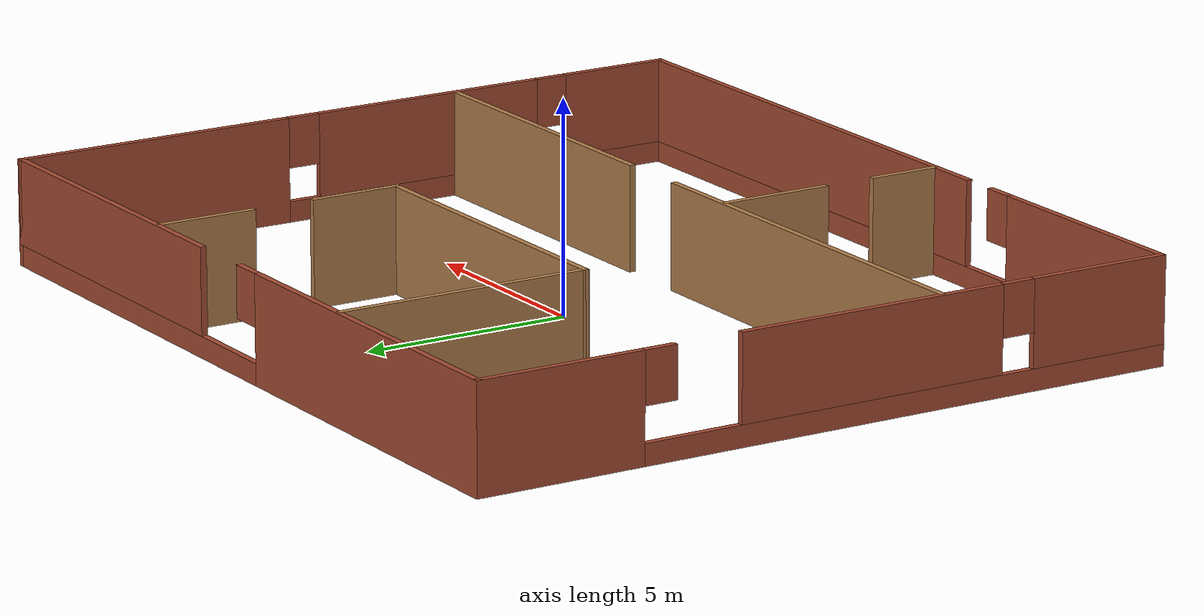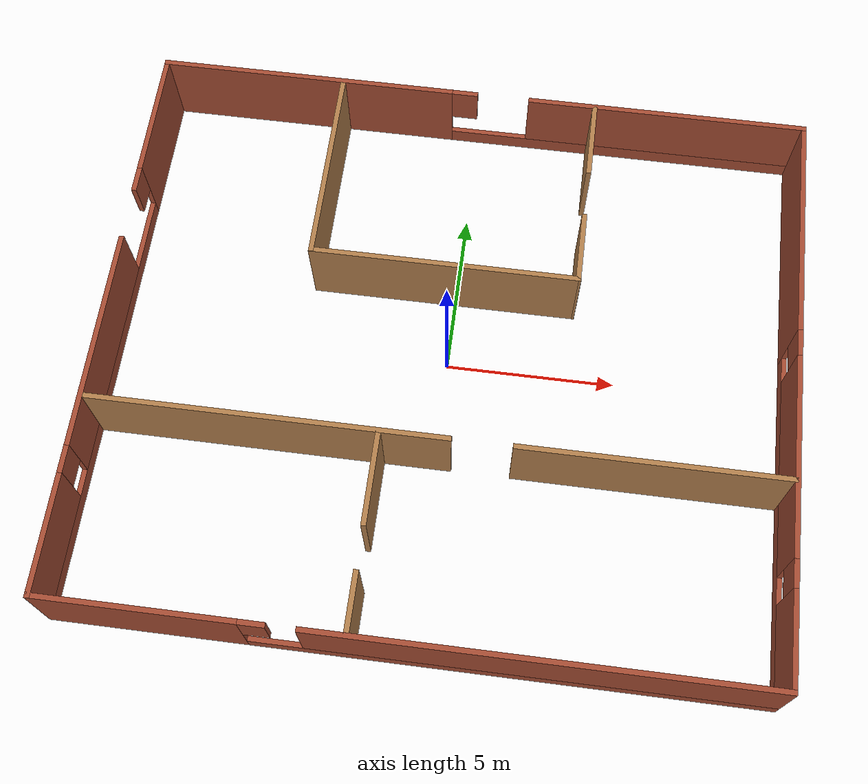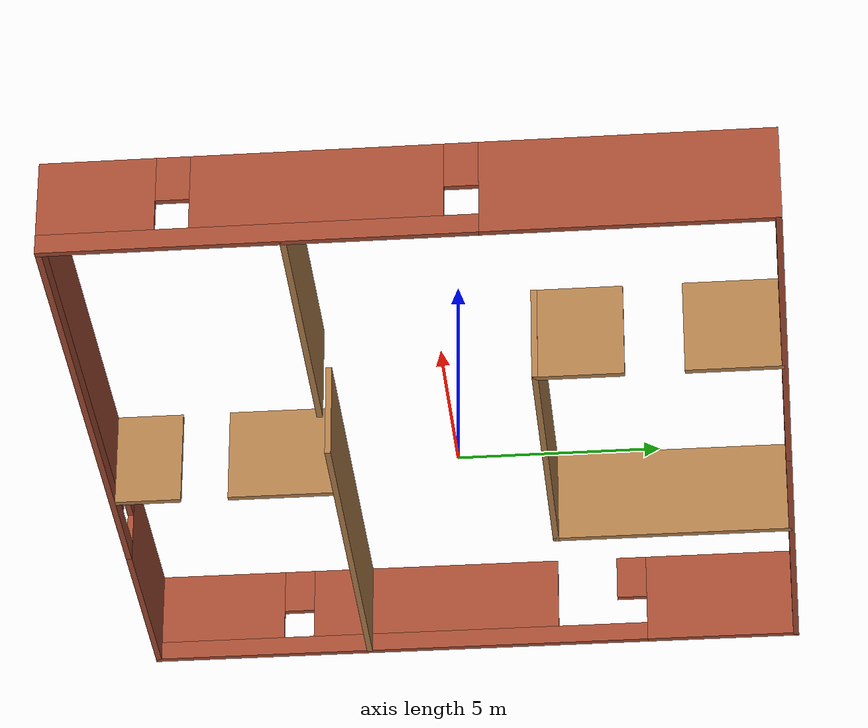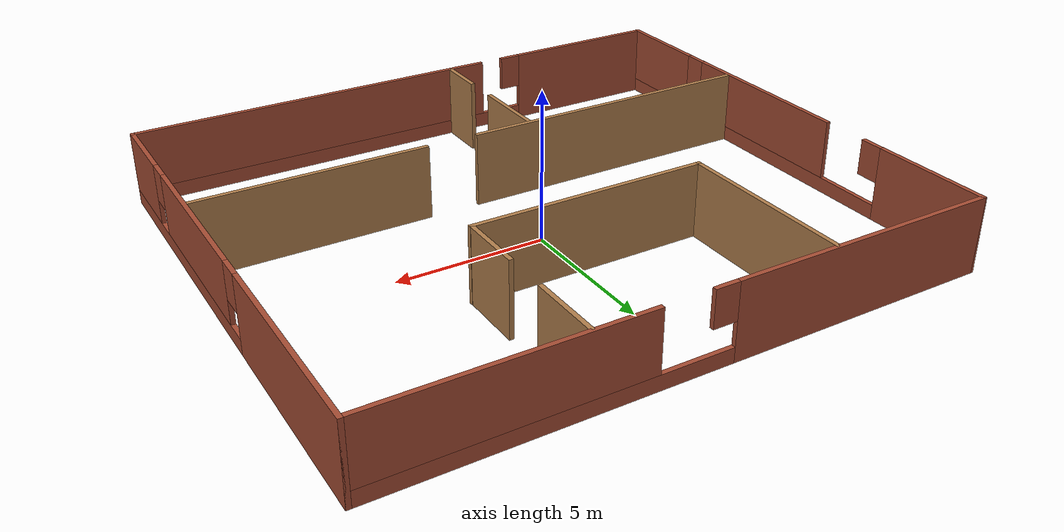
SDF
<?xml version='1.0'?>
<sdf version='1.7'>
  <model name='masters_world'>
    <pose>0.043095 -0.36879 0 0 -0 0</pose>
    <link name='Wall_11'>
      <pose>-9.5e-05 -8.55021 0 0 -0 0</pose>
      <visual name='Wall_11_Visual_0'>
        <pose>-7.19218 0 1.25 0 -0 0</pose>
        <geometry>
          <box>
            <size>5.61564 0.15 2.5</size>
          </box>
        </geometry>
        <material>
          <script>
            <uri>file://media/materials/scripts/gazebo.material</uri>
            <name>Gazebo/Bricks</name>
          </script>
          <ambient>1 1 1 1</ambient>
        </material>
        <meta>
          <layer>0</layer>
        </meta>
      </visual>
      <collision name='Wall_11_Collision_0'>
        <geometry>
          <box>
            <size>5.61564 0.15 2.5</size>
          </box>
        </geometry>
        <pose>-7.19218 0 1.25 0 -0 0</pose>
      </collision>
      <visual name='Wall_11_Visual_1'>
        <pose>2.80782 0 0.25 0 -0 0</pose>
        <geometry>
          <box>
            <size>14.3844 0.15 0.5</size>
          </box>
        </geometry>
        <material>
          <script>
            <uri>file://media/materials/scripts/gazebo.material</uri>
            <name>Gazebo/Bricks</name>
          </script>
          <ambient>1 1 1 1</ambient>
        </material>
        <meta>
          <layer>0</layer>
        </meta>
      </visual>
      <collision name='Wall_11_Collision_1'>
        <geometry>
          <box>
            <size>14.3844 0.15 0.5</size>
          </box>
        </geometry>
        <pose>2.80782 0 0.25 0 -0 0</pose>
      </collision>
      <visual name='Wall_11_Visual_2'>
        <pose>3.58022 0 1.5 0 -0 0</pose>
        <geometry>
          <box>
            <size>12.8396 0.15 2</size>
          </box>
        </geometry>
        <material>
          <script>
            <uri>file://media/materials/scripts/gazebo.material</uri>
            <name>Gazebo/Bricks</name>
          </script>
          <ambient>1 1 1 1</ambient>
        </material>
        <meta>
          <layer>0</layer>
        </meta>
      </visual>
      <collision name='Wall_11_Collision_2'>
        <geometry>
          <box>
            <size>12.8396 0.15 2</size>
          </box>
        </geometry>
        <pose>3.58022 0 1.5 0 -0 0</pose>
      </collision>
      <visual name='Wall_11_Visual_3'>
        <pose>-4.01195 0 1.9 0 -0 0</pose>
        <geometry>
          <box>
            <size>0.744806 0.15 1.2</size>
          </box>
        </geometry>
        <material>
          <script>
            <uri>file://media/materials/scripts/gazebo.material</uri>
            <name>Gazebo/Bricks</name>
          </script>
          <ambient>1 1 1 1</ambient>
        </material>
        <meta>
          <layer>0</layer>
        </meta>
      </visual>
      <collision name='Wall_11_Collision_3'>
        <geometry>
          <box>
            <size>0.744806 0.15 1.2</size>
          </box>
        </geometry>
        <pose>-4.01195 0 1.9 0 -0 0</pose>
      </collision>
    </link>
    <link name='Wall_13'>
      <collision name='Wall_13_Collision'>
        <geometry>
          <box>
            <size>6.12 0.15 2.5</size>
          </box>
        </geometry>
        <pose>0 0 1.25 0 -0 0</pose>
      </collision>
      <visual name='Wall_13_Visual'>
        <pose>0 0 1.25 0 -0 0</pose>
        <geometry>
          <box>
            <size>6.12 0.15 2.5</size>
          </box>
        </geometry>
        <material>
          <script>
            <uri>file://media/materials/scripts/gazebo.material</uri>
            <name>Gazebo/Wood</name>
          </script>
          <ambient>1 1 1 1</ambient>
        </material>
        <meta>
          <layer>0</layer>
        </meta>
      </visual>
      <pose>-4.33157 5.50864 0 0 -0 -1.5708</pose>
    </link>
    <link name='Wall_14'>
      <collision name='Wall_14_Collision'>
        <geometry>
          <box>
            <size>8.0115 0.15 2.5</size>
          </box>
        </geometry>
        <pose>0 0 1.25 0 -0 0</pose>
      </collision>
      <visual name='Wall_14_Visual'>
        <pose>0 0 1.25 0 -0 0</pose>
        <geometry>
          <box>
            <size>8.0115 0.15 2.5</size>
          </box>
        </geometry>
        <material>
          <script>
            <uri>file://media/materials/scripts/gazebo.material</uri>
            <name>Gazebo/Wood</name>
          </script>
          <ambient>1 1 1 1</ambient>
        </material>
        <meta>
          <layer>0</layer>
        </meta>
      </visual>
      <pose>-0.400821 2.51464 0 0 -0 0.000636</pose>
    </link>
    <link name='Wall_15'>
      <collision name='Wall_15_Collision'>
        <geometry>
          <box>
            <size>2.25 0.15 2.5</size>
          </box>
        </geometry>
        <pose>0 0 1.25 0 -0 0</pose>
      </collision>
      <visual name='Wall_15_Visual'>
        <pose>0 0 1.25 0 -0 0</pose>
        <geometry>
          <box>
            <size>2.25 0.15 2.5</size>
          </box>
        </geometry>
        <material>
          <script>
            <uri>file://media/materials/scripts/gazebo.material</uri>
            <name>Gazebo/Wood</name>
          </script>
          <ambient>1 1 1 1</ambient>
        </material>
        <meta>
          <layer>0</layer>
        </meta>
      </visual>
      <pose>3.51843 3.56714 0 0 -0 1.5708</pose>
    </link>
    <link name='Wall_22'>
      <collision name='Wall_22_Collision'>
        <geometry>
          <box>
            <size>2.4 0.15 2.5</size>
          </box>
        </geometry>
        <pose>0 0 1.25 0 -0 0</pose>
      </collision>
      <visual name='Wall_22_Visual'>
        <pose>0 0 1.25 0 -0 0</pose>
        <geometry>
          <box>
            <size>2.4 0.15 2.5</size>
          </box>
        </geometry>
        <material>
          <script>
            <uri>file://media/materials/scripts/gazebo.material</uri>
            <name>Gazebo/Wood</name>
          </script>
          <ambient>1 1 1 1</ambient>
        </material>
        <meta>
          <layer>0</layer>
        </meta>
      </visual>
      <pose>3.51843 7.34214 0 0 -0 1.5708</pose>
    </link>
    <link name='Wall_24'>
      <collision name='Wall_24_Collision'>
        <geometry>
          <box>
            <size>7.75 0.15 2.5</size>
          </box>
        </geometry>
        <pose>0 0 1.25 0 -0 0</pose>
      </collision>
      <visual name='Wall_24_Visual'>
        <pose>0 0 1.25 0 -0 0</pose>
        <geometry>
          <box>
            <size>7.75 0.15 2.5</size>
          </box>
        </geometry>
        <material>
          <script>
            <uri>file://media/materials/scripts/gazebo.material</uri>
            <name>Gazebo/Wood</name>
          </script>
          <ambient>1 1 1 1</ambient>
        </material>
        <meta>
          <layer>0</layer>
        </meta>
      </visual>
      <pose>6.06037 -2.85345 0 0 -0 3.14159</pose>
    </link>
    <link name='Wall_29'>
      <collision name='Wall_29_Collision'>
        <geometry>
          <box>
            <size>10.4 0.15 2.5</size>
          </box>
        </geometry>
        <pose>0 0 1.25 0 -0 0</pose>
      </collision>
      <visual name='Wall_29_Visual'>
        <pose>0 0 1.25 0 -0 0</pose>
        <geometry>
          <box>
            <size>10.4 0.15 2.5</size>
          </box>
        </geometry>
        <material>
          <script>
            <uri>file://media/materials/scripts/gazebo.material</uri>
            <name>Gazebo/Wood</name>
          </script>
          <ambient>1 1 1 1</ambient>
        </material>
        <meta>
          <layer>0</layer>
        </meta>
      </visual>
      <pose>-4.71463 -2.85345 0 0 -0 3.14159</pose>
    </link>
    <link name='Wall_3'>
      <pose>-9.9251 -0.00021 0 0 -0 -1.5708</pose>
      <visual name='Wall_3_Visual_0'>
        <pose>-6.61395 0 1.25 0 -0 0</pose>
        <geometry>
          <box>
            <size>4.0221 0.15 2.5</size>
          </box>
        </geometry>
        <material>
          <script>
            <uri>file://media/materials/scripts/gazebo.material</uri>
            <name>Gazebo/Bricks</name>
          </script>
          <ambient>1 1 1 1</ambient>
        </material>
        <meta>
          <layer>0</layer>
        </meta>
      </visual>
      <collision name='Wall_3_Collision_0'>
        <geometry>
          <box>
            <size>4.0221 0.15 2.5</size>
          </box>
        </geometry>
        <pose>-6.61395 0 1.25 0 -0 0</pose>
      </collision>
      <visual name='Wall_3_Visual_1'>
        <pose>2.01105 0 0.25 0 -0 0</pose>
        <geometry>
          <box>
            <size>13.2279 0.15 0.5</size>
          </box>
        </geometry>
        <material>
          <script>
            <uri>file://media/materials/scripts/gazebo.material</uri>
            <name>Gazebo/Bricks</name>
          </script>
          <ambient>1 1 1 1</ambient>
        </material>
        <meta>
          <layer>0</layer>
        </meta>
      </visual>
      <collision name='Wall_3_Collision_1'>
        <geometry>
          <box>
            <size>13.2279 0.15 0.5</size>
          </box>
        </geometry>
        <pose>2.01105 0 0.25 0 -0 0</pose>
      </collision>
      <visual name='Wall_3_Visual_2'>
        <pose>1.06427 0 1.5 0 -0 0</pose>
        <geometry>
          <box>
            <size>6.59663 0.15 2</size>
          </box>
        </geometry>
        <material>
          <script>
            <uri>file://media/materials/scripts/gazebo.material</uri>
            <name>Gazebo/Bricks</name>
          </script>
          <ambient>1 1 1 1</ambient>
        </material>
        <meta>
          <layer>0</layer>
        </meta>
      </visual>
      <collision name='Wall_3_Collision_2'>
        <geometry>
          <box>
            <size>6.59663 0.15 2</size>
          </box>
        </geometry>
        <pose>1.06427 0 1.5 0 -0 0</pose>
      </collision>
      <visual name='Wall_3_Visual_3'>
        <pose>6.89379 0 1.5 0 -0 0</pose>
        <geometry>
          <box>
            <size>3.46241 0.15 2</size>
          </box>
        </geometry>
        <material>
          <script>
            <uri>file://media/materials/scripts/gazebo.material</uri>
            <name>Gazebo/Bricks</name>
          </script>
          <ambient>1 1 1 1</ambient>
        </material>
        <meta>
          <layer>0</layer>
        </meta>
      </visual>
      <collision name='Wall_3_Collision_3'>
        <geometry>
          <box>
            <size>3.46241 0.15 2</size>
          </box>
        </geometry>
        <pose>6.89379 0 1.5 0 -0 0</pose>
      </collision>
      <visual name='Wall_3_Visual_4'>
        <pose>-4.21069 0 1.9 0 -0 0</pose>
        <geometry>
          <box>
            <size>0.784429 0.15 1.2</size>
          </box>
        </geometry>
        <material>
          <script>
            <uri>file://media/materials/scripts/gazebo.material</uri>
            <name>Gazebo/Bricks</name>
          </script>
          <ambient>1 1 1 1</ambient>
        </material>
        <meta>
          <layer>0</layer>
        </meta>
      </visual>
      <collision name='Wall_3_Collision_4'>
        <geometry>
          <box>
            <size>0.784429 0.15 1.2</size>
          </box>
        </geometry>
        <pose>-4.21069 0 1.9 0 -0 0</pose>
      </collision>
      <visual name='Wall_3_Visual_5'>
        <pose>4.76259 0 1.9 0 -0 0</pose>
        <geometry>
          <box>
            <size>0.8 0.15 1.2</size>
          </box>
        </geometry>
        <material>
          <script>
            <uri>file://media/materials/scripts/gazebo.material</uri>
            <name>Gazebo/Bricks</name>
          </script>
          <ambient>1 1 1 1</ambient>
        </material>
        <meta>
          <layer>0</layer>
        </meta>
      </visual>
      <collision name='Wall_3_Collision_5'>
        <geometry>
          <box>
            <size>0.8 0.15 1.2</size>
          </box>
        </geometry>
        <pose>4.76259 0 1.9 0 -0 0</pose>
      </collision>
    </link>
    <link name='Wall_31'>
      <collision name='Wall_31_Collision'>
        <geometry>
          <box>
            <size>2.75 0.15 2.5</size>
          </box>
        </geometry>
        <pose>0 0 1.25 0 -0 0</pose>
      </collision>
      <visual name='Wall_31_Visual'>
        <pose>0 0 1.25 0 -0 0</pose>
        <geometry>
          <box>
            <size>2.75 0.15 2.5</size>
          </box>
        </geometry>
        <material>
          <script>
            <uri>file://media/materials/scripts/gazebo.material</uri>
            <name>Gazebo/Wood</name>
          </script>
          <ambient>1 1 1 1</ambient>
        </material>
        <meta>
          <layer>0</layer>
        </meta>
      </visual>
      <pose>-1.53723 -4.22617 0 0 -0 -1.5708</pose>
    </link>
    <link name='Wall_33'>
      <collision name='Wall_33_Collision'>
        <geometry>
          <box>
            <size>1.75 0.15 2.5</size>
          </box>
        </geometry>
        <pose>0 0 1.25 0 -0 0</pose>
      </collision>
      <visual name='Wall_33_Visual'>
        <pose>0 0 1.25 0 -0 0</pose>
        <geometry>
          <box>
            <size>1.75 0.15 2.5</size>
          </box>
        </geometry>
        <material>
          <script>
            <uri>file://media/materials/scripts/gazebo.material</uri>
            <name>Gazebo/Wood</name>
          </script>
          <ambient>1 1 1 1</ambient>
        </material>
        <meta>
          <layer>0</layer>
        </meta>
      </visual>
      <pose>-1.53723 -7.67617 0 0 -0 -1.5708</pose>
    </link>
    <link name='Wall_6'>
      <pose>0 8.55 0 0 -0 2.1e-05</pose>
      <visual name='Wall_6_Visual_0'>
        <pose>-5.45558 0 1.25 0 -0 0</pose>
        <geometry>
          <box>
            <size>9.08883 0.15 2.5</size>
          </box>
        </geometry>
        <material>
          <script>
            <uri>file://media/materials/scripts/gazebo.material</uri>
            <name>Gazebo/Bricks</name>
          </script>
          <ambient>1 1 1 1</ambient>
        </material>
        <meta>
          <layer>0</layer>
        </meta>
      </visual>
      <collision name='Wall_6_Collision_0'>
        <geometry>
          <box>
            <size>9.08883 0.15 2.5</size>
          </box>
        </geometry>
        <pose>-5.45558 0 1.25 0 -0 0</pose>
      </collision>
      <visual name='Wall_6_Visual_1'>
        <pose>4.54442 0 0.25 0 -0 0</pose>
        <geometry>
          <box>
            <size>10.9112 0.15 0.5</size>
          </box>
        </geometry>
        <material>
          <script>
            <uri>file://media/materials/scripts/gazebo.material</uri>
            <name>Gazebo/Bricks</name>
          </script>
          <ambient>1 1 1 1</ambient>
        </material>
        <meta>
          <layer>0</layer>
        </meta>
      </visual>
      <collision name='Wall_6_Collision_1'>
        <geometry>
          <box>
            <size>10.9112 0.15 0.5</size>
          </box>
        </geometry>
        <pose>4.54442 0 0.25 0 -0 0</pose>
      </collision>
      <visual name='Wall_6_Visual_2'>
        <pose>5.73217 0 1.5 0 -0 0</pose>
        <geometry>
          <box>
            <size>8.53567 0.15 2</size>
          </box>
        </geometry>
        <material>
          <script>
            <uri>file://media/materials/scripts/gazebo.material</uri>
            <name>Gazebo/Bricks</name>
          </script>
          <ambient>1 1 1 1</ambient>
        </material>
        <meta>
          <layer>0</layer>
        </meta>
      </visual>
      <collision name='Wall_6_Collision_2'>
        <geometry>
          <box>
            <size>8.53567 0.15 2</size>
          </box>
        </geometry>
        <pose>5.73217 0 1.5 0 -0 0</pose>
      </collision>
      <visual name='Wall_6_Visual_3'>
        <pose>-0.514419 0 1.9 0 -0 0</pose>
        <geometry>
          <box>
            <size>0.793495 0.15 1.2</size>
          </box>
        </geometry>
        <material>
          <script>
            <uri>file://media/materials/scripts/gazebo.material</uri>
            <name>Gazebo/Bricks</name>
          </script>
          <ambient>1 1 1 1</ambient>
        </material>
        <meta>
          <layer>0</layer>
        </meta>
      </visual>
      <collision name='Wall_6_Collision_3'>
        <geometry>
          <box>
            <size>0.793495 0.15 1.2</size>
          </box>
        </geometry>
        <pose>-0.514419 0 1.9 0 -0 0</pose>
      </collision>
    </link>
    <link name='Wall_9'>
      <pose>9.9251 0.00021 0 0 -0 -1.5708</pose>
      <visual name='Wall_9_Visual_0'>
        <pose>-5.14975 0 1.25 0 -0 0</pose>
        <geometry>
          <box>
            <size>6.9505 0.15 2.5</size>
          </box>
        </geometry>
        <material>
          <script>
            <uri>file://media/materials/scripts/gazebo.material</uri>
            <name>Gazebo/Bricks</name>
          </script>
          <ambient>1 1 1 1</ambient>
        </material>
        <meta>
          <layer>0</layer>
        </meta>
      </visual>
      <collision name='Wall_9_Collision_0'>
        <geometry>
          <box>
            <size>6.9505 0.15 2.5</size>
          </box>
        </geometry>
        <pose>-5.14975 0 1.25 0 -0 0</pose>
      </collision>
      <visual name='Wall_9_Visual_1'>
        <pose>3.47525 0 0.25 0 -0 0</pose>
        <geometry>
          <box>
            <size>10.2995 0.15 0.5</size>
          </box>
        </geometry>
        <material>
          <script>
            <uri>file://media/materials/scripts/gazebo.material</uri>
            <name>Gazebo/Bricks</name>
          </script>
          <ambient>1 1 1 1</ambient>
        </material>
        <meta>
          <layer>0</layer>
        </meta>
      </visual>
      <collision name='Wall_9_Collision_1'>
        <geometry>
          <box>
            <size>10.2995 0.15 0.5</size>
          </box>
        </geometry>
        <pose>3.47525 0 0.25 0 -0 0</pose>
      </collision>
      <visual name='Wall_9_Visual_2'>
        <pose>2.08926 0 1.5 0 -0 0</pose>
        <geometry>
          <box>
            <size>5.9275 0.15 2</size>
          </box>
        </geometry>
        <material>
          <script>
            <uri>file://media/materials/scripts/gazebo.material</uri>
            <name>Gazebo/Bricks</name>
          </script>
          <ambient>1 1 1 1</ambient>
        </material>
        <meta>
          <layer>0</layer>
        </meta>
      </visual>
      <collision name='Wall_9_Collision_2'>
        <geometry>
          <box>
            <size>5.9275 0.15 2</size>
          </box>
        </geometry>
        <pose>2.08926 0 1.5 0 -0 0</pose>
      </collision>
      <visual name='Wall_9_Visual_3'>
        <pose>7.239 0 1.5 0 -0 0</pose>
        <geometry>
          <box>
            <size>2.77199 0.15 2</size>
          </box>
        </geometry>
        <material>
          <script>
            <uri>file://media/materials/scripts/gazebo.material</uri>
            <name>Gazebo/Bricks</name>
          </script>
          <ambient>1 1 1 1</ambient>
        </material>
        <meta>
          <layer>0</layer>
        </meta>
      </visual>
      <collision name='Wall_9_Collision_3'>
        <geometry>
          <box>
            <size>2.77199 0.15 2</size>
          </box>
        </geometry>
        <pose>7.239 0 1.5 0 -0 0</pose>
      </collision>
      <visual name='Wall_9_Visual_4'>
        <pose>-1.27449 0 1.9 0 -0 0</pose>
        <geometry>
          <box>
            <size>0.8 0.15 1.2</size>
          </box>
        </geometry>
        <material>
          <script>
            <uri>file://media/materials/scripts/gazebo.material</uri>
            <name>Gazebo/Bricks</name>
          </script>
          <ambient>1 1 1 1</ambient>
        </material>
        <meta>
          <layer>0</layer>
        </meta>
      </visual>
      <collision name='Wall_9_Collision_4'>
        <geometry>
          <box>
            <size>0.8 0.15 1.2</size>
          </box>
        </geometry>
        <pose>-1.27449 0 1.9 0 -0 0</pose>
      </collision>
      <visual name='Wall_9_Visual_5'>
        <pose>5.45301 0 1.9 0 -0 0</pose>
        <geometry>
          <box>
            <size>0.8 0.15 1.2</size>
          </box>
        </geometry>
        <material>
          <script>
            <uri>file://media/materials/scripts/gazebo.material</uri>
            <name>Gazebo/Bricks</name>
          </script>
          <ambient>1 1 1 1</ambient>
        </material>
        <meta>
          <layer>0</layer>
        </meta>
      </visual>
      <collision name='Wall_9_Collision_5'>
        <geometry>
          <box>
            <size>0.8 0.15 1.2</size>
          </box>
        </geometry>
        <pose>5.45301 0 1.9 0 -0 0</pose>
      </collision>
    </link>
    <static>1</static>
  </model>
</sdf>
